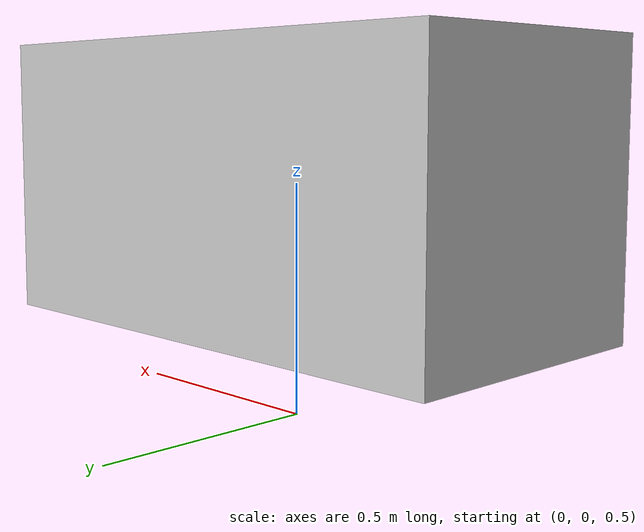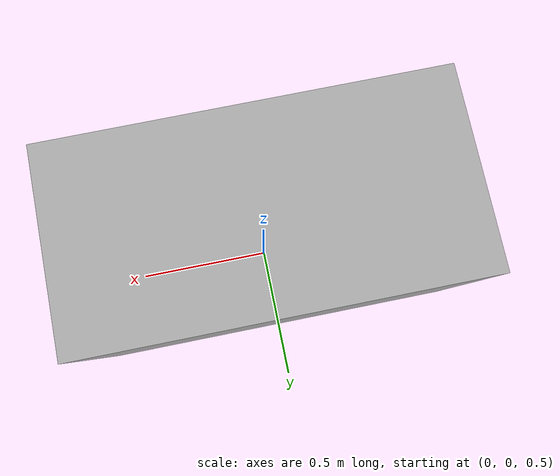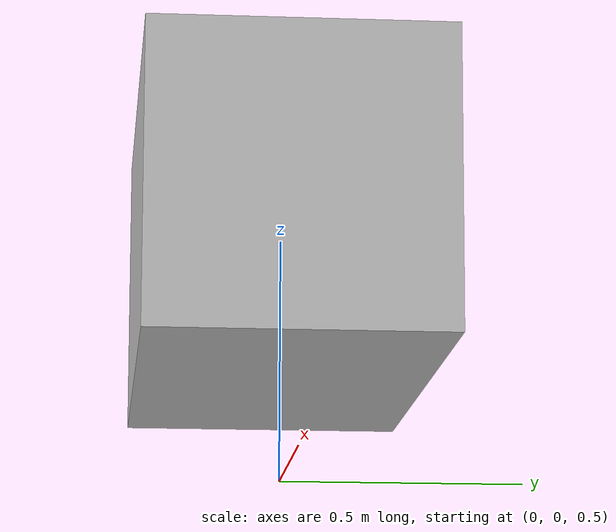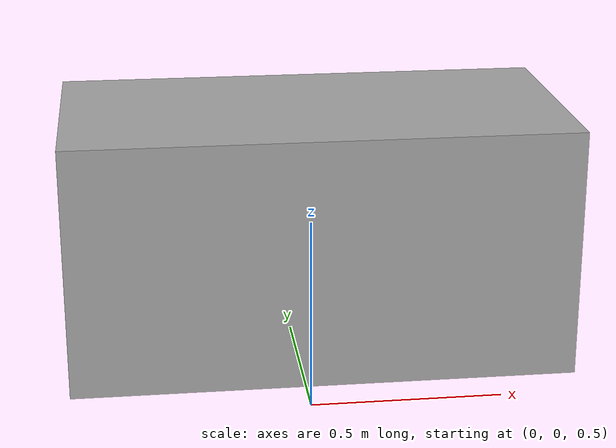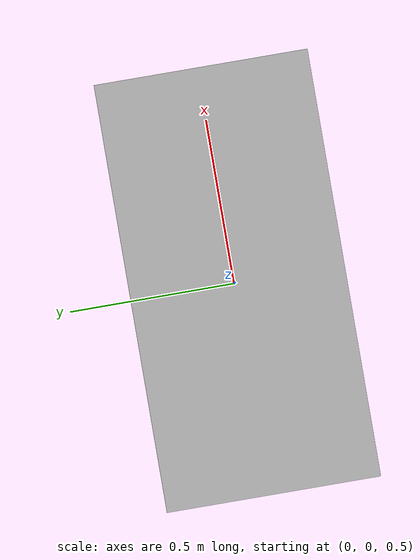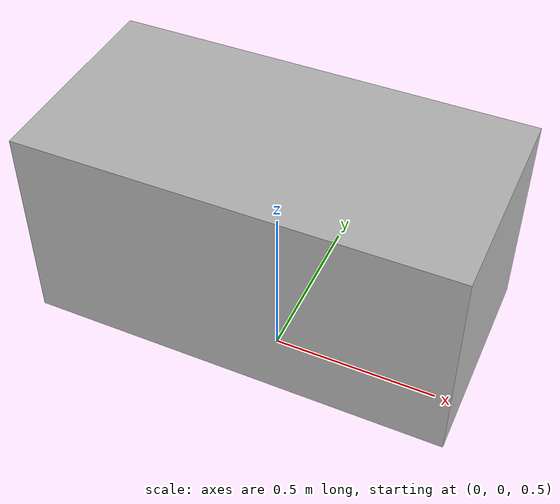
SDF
<?xml version="1.0" ?>
<sdf version="1.6">
  <model name="mate_subway_box">
    <pose>0 0 1 0 0 0</pose>
    <static>true</static>
    <link name="link">
      <collision name="collision">
        <geometry>
          <box>
            <size>1.2 .6 .6</size>
          </box>
        </geometry>
      </collision>

      <visual name="visual">
        <geometry>
          <box>
            <size>1.2 .6 .6</size>
          </box>
        </geometry>
        <material>
         <script>
            <uri>model://mate_subway_box/materials/scripts</uri>
            <uri>model://mate_subway_box/materials/textures</uri>
            <name>subway/Diffuse</name>
         </script>
        </material>
      </visual>
    </link>
  </model>
</sdf>
